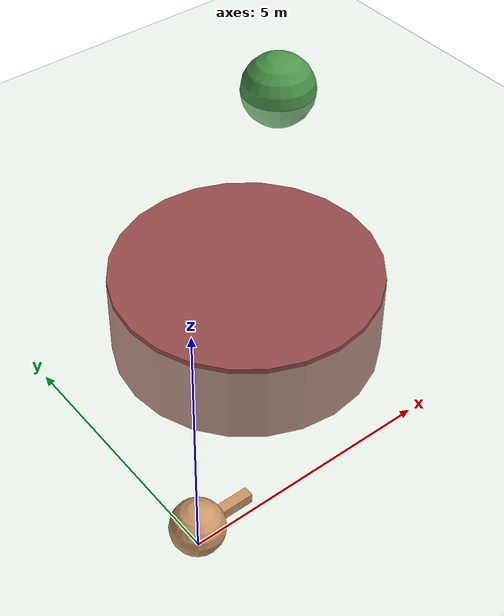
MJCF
<mujoco model="ant">
  <compiler inertiafromgeom="true" angle="degree" coordinate="local" />
  <option timestep="0.02" integrator="RK4" />
  <custom>
    <numeric name="init_qpos" data="0.0 0.0 0.55 1.0 0.0 0.0 0.0 0.0 1.0 0.0 -1.0 0.0 -1.0 0.0 1.0" />
  </custom>
  <default>
    <joint limited="true" armature="1" damping="1" />
    <geom condim="3" conaffinity="0" margin="0.01" friction="1 0.5 0.5" solref=".02 1" solimp=".8 .8 .01" rgba="0.8 0.6 0.4 1" density="5.0" />
  </default>
  <asset>
    <texture type="skybox" builtin="gradient" width="100" height="100" rgb1="1 1 1" rgb2="0 0 0" />
    <texture name="texgeom" type="cube" builtin="flat" mark="cross" width="127" height="1278" rgb1="0.8 0.6 0.4" rgb2="0.8 0.6 0.4" markrgb="1 1 1" random="0.01" />
    <texture name="texplane" type="2d" builtin="checker" rgb1="0.2 0.3 0.4" rgb2="0.1 0.2 0.3" width="100" height="100" />
    <material name='MatPlane' texture="texplane" shininess="1" texrepeat="60 60" specular="1"  reflectance="0.0" />
    <material name='geom' texture="texgeom" texuniform="true" />
  </asset>
  <worldbody>
    <light directional="true" cutoff="100" exponent="1" diffuse="1 1 1" specular=".1 .1 .1" pos="0 0 1.3" dir="-0 0 -1.3" />
    <geom name='floor' pos='0 0 0' size='40 40 40' type='plane' conaffinity='1' rgba='0.8 0.9 0.8 1' condim='3' material='MatPlane' />
      <site name='goal' pos="10 10 0" size="1 1 1" type="sphere" rgba='0.3 0.6 0.3 1'/>
        <site name='trap' pos="5 5 -0.9" size="3 1" type="cylinder" rgba=".6 .3 .3 1"/>

        <body name="torso" pos="0 0 0">
      <geom name="pointbody" type="sphere" size="0.5" pos="0 0 0.5" />
      <geom name="pointarrow" type="box" size="0.5 0.1 0.1" pos="0.6 0 0.5" />
      <joint name='ballx' type='slide' axis='1 0 0' pos='0 0 0' />
      <joint name='bally' type='slide' axis='0 1 0' pos='0 0 0' />
      <joint name='rot' type='hinge' axis='0 0 1' pos='0 0 0' limited="false" />
    </body>

  </worldbody>
  <actuator>
    <motor joint="hip_4" ctrlrange="-30.0 30.0" ctrllimited="true" />
    <motor joint="ankle_4" ctrlrange="-30.0 30.0" ctrllimited="true" />
    <motor joint="hip_1" ctrlrange="-30.0 30.0" ctrllimited="true" />
    <motor joint="ankle_1" ctrlrange="-30.0 30.0" ctrllimited="true" />
    <motor joint="hip_2" ctrlrange="-30.0 30.0" ctrllimited="true" />
    <motor joint="ankle_2" ctrlrange="-30.0 30.0" ctrllimited="true" />
    <motor joint="hip_3" ctrlrange="-30.0 30.0" ctrllimited="true" />
    <motor joint="ankle_3" ctrlrange="-30.0 30.0" ctrllimited="true" />
  </actuator>
</mujoco>
